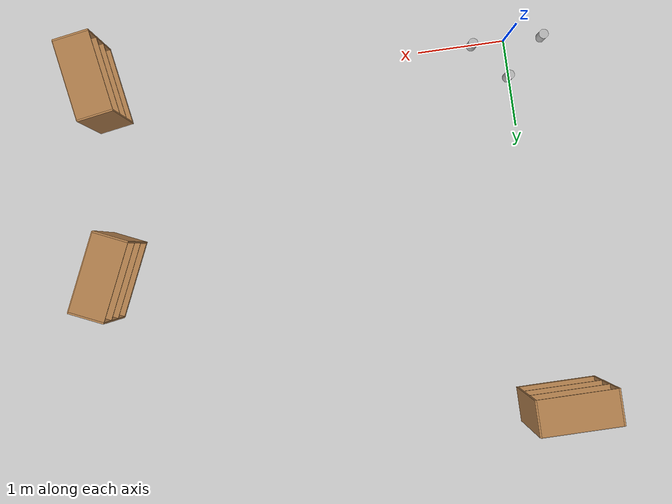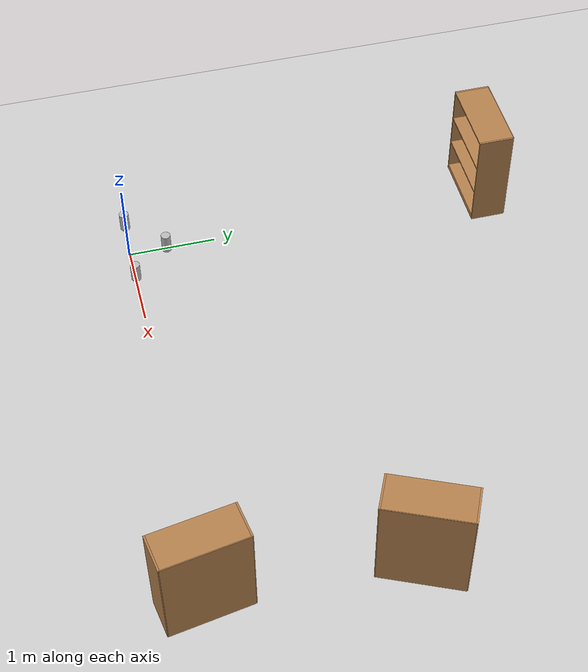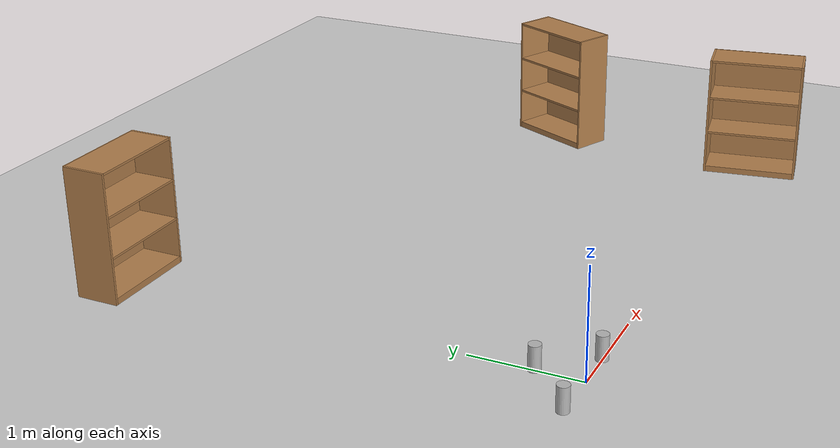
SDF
<sdf version="1.6">
 <world name="default">
  <model name="ground_plane">
   <static>1</static>
   <link name="link">
    <collision name="collision">
     <geometry><plane><normal>0 0 1</normal><size>5000 5000</size></plane></geometry>
     <surface><friction><ode><mu>1</mu><mu2>1</mu2></ode></friction></surface>
    </collision>
    <visual name="runway">
     <pose>0 0 0.005 0 0 -1.5707</pose>
     <cast_shadows>0</cast_shadows>
     <geometry><plane><normal>0 0 1</normal><size>1829 45</size></plane></geometry>
     <material>
      <script><uri>file://media/materials/scripts/gazebo.material</uri><name>Gazebo/Runway</name></script>
     </material>
    </visual>
    <visual name="grass">
     <pose>0 0 -0.1 0 -0 0</pose>
     <cast_shadows>0</cast_shadows>
     <geometry><plane><normal>0 0 1</normal><size>5000 5000</size></plane></geometry>
     <material>
      <script><uri>file://media/materials/scripts/gazebo.material</uri><name>Gazebo/Grass</name></script>
     </material>
    </visual>
   </link>
  </model>
  <model name="beer">
   <link name="link">
    <pose>0 0 0.115 0 -0 0</pose>
    <inertial>
     <mass>0.39</mass>
     <inertia><ixx>0.00058</ixx><ixy>0</ixy><ixz>0</ixz><iyy>0.00058</iyy><iyz>0</iyz><izz>0.00019</izz></inertia>
    </inertial>
    <collision name="collision">
     <geometry><cylinder><radius>0.055</radius><length>0.23</length></cylinder></geometry>
    </collision>
    <visual name="visual">
     <geometry><cylinder><radius>0.055</radius><length>0.23</length></cylinder></geometry>
     <material>
      <script>
       <uri>model://beer/materials/scripts</uri>
       <uri>model://beer/materials/textures</uri>
       <name>Beer/Diffuse</name>
      </script>
     </material>
    </visual>
   </link>
   <pose>0.380747 0.009912 -9e-06 0 -0 1e-05</pose>
  </model>
  <model name="beer_0">
   <link name="link">
    <pose>0 0 0.115 0 -0 0</pose>
    <inertial>
     <mass>0.39</mass>
     <inertia><ixx>0.00058</ixx><ixy>0</ixy><ixz>0</ixz><iyy>0.00058</iyy><iyz>0</iyz><izz>0.00019</izz></inertia>
    </inertial>
    <collision name="collision">
     <geometry><cylinder><radius>0.055</radius><length>0.23</length></cylinder></geometry>
    </collision>
    <visual name="visual">
     <geometry><cylinder><radius>0.055</radius><length>0.23</length></cylinder></geometry>
     <material>
      <script>
       <uri>model://beer/materials/scripts</uri>
       <uri>model://beer/materials/textures</uri>
       <name>Beer/Diffuse</name>
      </script>
     </material>
    </visual>
   </link>
   <pose>-0.438596 0.020012 -2e-06 0 0 -4.3e-05</pose>
  </model>
  <model name="beer_2">
   <link name="link">
    <pose>0 0 0.115 0 -0 0</pose>
    <inertial>
     <mass>0.39</mass>
     <inertia><ixx>0.00058</ixx><ixy>0</ixy><ixz>0</ixz><iyy>0.00058</iyy><iyz>0</iyz><izz>0.00019</izz></inertia>
    </inertial>
    <collision name="collision">
     <geometry><cylinder><radius>0.055</radius><length>0.23</length></cylinder></geometry>
    </collision>
    <visual name="visual">
     <geometry><cylinder><radius>0.055</radius><length>0.23</length></cylinder></geometry>
     <material>
      <script>
       <uri>model://beer/materials/scripts</uri>
       <uri>model://beer/materials/textures</uri>
       <name>Beer/Diffuse</name>
      </script>
     </material>
    </visual>
   </link>
   <pose>0.01568 0.431746 -1e-06 0 -0 7.6e-05</pose>
  </model>
  <model name="bookshelf">
   <static>1</static>
   <link name="link">
    <inertial><mass>1</mass></inertial>
    <collision name="back">
     <pose>0 0.005 0.6 0 -0 0</pose>
     <geometry><box><size>0.9 0.01 1.2</size></box></geometry>
    </collision>
    <visual name="visual1">
     <pose>0 0.005 0.6 0 -0 0</pose>
     <geometry><box><size>0.9 0.01 1.2</size></box></geometry>
     <material>
      <script><uri>file://media/materials/scripts/gazebo.material</uri><name>Gazebo/Wood</name></script>
     </material>
    </visual>
    <collision name="left_side">
     <pose>0.45 -0.195 0.6 0 -0 0</pose>
     <geometry><box><size>0.02 0.4 1.2</size></box></geometry>
    </collision>
    <visual name="visual2">
     <pose>0.45 -0.195 0.6 0 -0 0</pose>
     <geometry><box><size>0.02 0.4 1.2</size></box></geometry>
     <material>
      <script><uri>file://media/materials/scripts/gazebo.material</uri><name>Gazebo/Wood</name></script>
     </material>
    </visual>
    <collision name="right_side">
     <pose>-0.45 -0.195 0.6 0 -0 0</pose>
     <geometry><box><size>0.02 0.4 1.2</size></box></geometry>
    </collision>
    <visual name="visual3">
     <pose>-0.45 -0.195 0.6 0 -0 0</pose>
     <geometry><box><size>0.02 0.4 1.2</size></box></geometry>
     <material>
      <script><uri>file://media/materials/scripts/gazebo.material</uri><name>Gazebo/Wood</name></script>
     </material>
    </visual>
    <collision name="bottom">
     <pose>0 -0.195 0.03 0 -0 0</pose>
     <geometry><box><size>0.88 0.4 0.06</size></box></geometry>
    </collision>
    <visual name="visual4">
     <pose>0 -0.195 0.03 0 -0 0</pose>
     <geometry><box><size>0.88 0.4 0.06</size></box></geometry>
     <material>
      <script><uri>file://media/materials/scripts/gazebo.material</uri><name>Gazebo/Wood</name></script>
     </material>
    </visual>
    <collision name="top">
     <pose>0 -0.195 1.19 0 -0 0</pose>
     <geometry><box><size>0.88 0.4 0.02</size></box></geometry>
    </collision>
    <visual name="visual5">
     <pose>0 -0.195 1.19 0 -0 0</pose>
     <geometry><box><size>0.88 0.4 0.02</size></box></geometry>
     <material>
      <script><uri>file://media/materials/scripts/gazebo.material</uri><name>Gazebo/Wood</name></script>
     </material>
    </visual>
    <collision name="low_shelf">
     <pose>0 -0.195 0.43 0 -0 0</pose>
     <geometry><box><size>0.88 0.4 0.02</size></box></geometry>
    </collision>
    <visual name="visual6">
     <pose>0 -0.195 0.43 0 -0 0</pose>
     <geometry><box><size>0.88 0.4 0.02</size></box></geometry>
     <material>
      <script><uri>file://media/materials/scripts/gazebo.material</uri><name>Gazebo/Wood</name></script>
     </material>
    </visual>
    <collision name="high_shelf">
     <pose>0 -0.195 0.8 0 -0 0</pose>
     <geometry><box><size>0.88 0.4 0.02</size></box></geometry>
    </collision>
    <visual name="visual7">
     <pose>0 -0.195 0.8 0 -0 0</pose>
     <geometry><box><size>0.88 0.4 0.02</size></box></geometry>
     <material>
      <script><uri>file://media/materials/scripts/gazebo.material</uri><name>Gazebo/Wood</name></script>
     </material>
    </visual>
   </link>
   <pose>4.88432 -0.040911 0 0 0 -1.40902</pose>
  </model>
  <model name="bookshelf_clone">
   <static>1</static>
   <link name="link">
    <inertial><mass>1</mass></inertial>
    <collision name="back">
     <pose>0 0.005 0.6 0 -0 0</pose>
     <geometry><box><size>0.9 0.01 1.2</size></box></geometry>
    </collision>
    <visual name="visual1">
     <pose>0 0.005 0.6 0 -0 0</pose>
     <geometry><box><size>0.9 0.01 1.2</size></box></geometry>
     <material>
      <script><uri>file://media/materials/scripts/gazebo.material</uri><name>Gazebo/Wood</name></script>
     </material>
    </visual>
    <collision name="left_side">
     <pose>0.45 -0.195 0.6 0 -0 0</pose>
     <geometry><box><size>0.02 0.4 1.2</size></box></geometry>
    </collision>
    <visual name="visual2">
     <pose>0.45 -0.195 0.6 0 -0 0</pose>
     <geometry><box><size>0.02 0.4 1.2</size></box></geometry>
     <material>
      <script><uri>file://media/materials/scripts/gazebo.material</uri><name>Gazebo/Wood</name></script>
     </material>
    </visual>
    <collision name="right_side">
     <pose>-0.45 -0.195 0.6 0 -0 0</pose>
     <geometry><box><size>0.02 0.4 1.2</size></box></geometry>
    </collision>
    <visual name="visual3">
     <pose>-0.45 -0.195 0.6 0 -0 0</pose>
     <geometry><box><size>0.02 0.4 1.2</size></box></geometry>
     <material>
      <script><uri>file://media/materials/scripts/gazebo.material</uri><name>Gazebo/Wood</name></script>
     </material>
    </visual>
    <collision name="bottom">
     <pose>0 -0.195 0.03 0 -0 0</pose>
     <geometry><box><size>0.88 0.4 0.06</size></box></geometry>
    </collision>
    <visual name="visual4">
     <pose>0 -0.195 0.03 0 -0 0</pose>
     <geometry><box><size>0.88 0.4 0.06</size></box></geometry>
     <material>
      <script><uri>file://media/materials/scripts/gazebo.material</uri><name>Gazebo/Wood</name></script>
     </material>
    </visual>
    <collision name="top">
     <pose>0 -0.195 1.19 0 -0 0</pose>
     <geometry><box><size>0.88 0.4 0.02</size></box></geometry>
    </collision>
    <visual name="visual5">
     <pose>0 -0.195 1.19 0 -0 0</pose>
     <geometry><box><size>0.88 0.4 0.02</size></box></geometry>
     <material>
      <script><uri>file://media/materials/scripts/gazebo.material</uri><name>Gazebo/Wood</name></script>
     </material>
    </visual>
    <collision name="low_shelf">
     <pose>0 -0.195 0.43 0 -0 0</pose>
     <geometry><box><size>0.88 0.4 0.02</size></box></geometry>
    </collision>
    <visual name="visual6">
     <pose>0 -0.195 0.43 0 -0 0</pose>
     <geometry><box><size>0.88 0.4 0.02</size></box></geometry>
     <material>
      <script><uri>file://media/materials/scripts/gazebo.material</uri><name>Gazebo/Wood</name></script>
     </material>
    </visual>
    <collision name="high_shelf">
     <pose>0 -0.195 0.8 0 -0 0</pose>
     <geometry><box><size>0.88 0.4 0.02</size></box></geometry>
    </collision>
    <visual name="visual7">
     <pose>0 -0.195 0.8 0 -0 0</pose>
     <geometry><box><size>0.88 0.4 0.02</size></box></geometry>
     <material>
      <script><uri>file://media/materials/scripts/gazebo.material</uri><name>Gazebo/Wood</name></script>
     </material>
    </visual>
   </link>
   <pose>5 2 0 0 0 -1.99754</pose>
  </model>
  <model name="bookshelf_clone_1">
   <static>1</static>
   <link name="link">
    <inertial><mass>1</mass></inertial>
    <collision name="back">
     <pose>0 0.005 0.6 0 -0 0</pose>
     <geometry><box><size>0.9 0.01 1.2</size></box></geometry>
    </collision>
    <visual name="visual1">
     <pose>0 0.005 0.6 0 -0 0</pose>
     <geometry><box><size>0.9 0.01 1.2</size></box></geometry>
     <material>
      <script><uri>file://media/materials/scripts/gazebo.material</uri><name>Gazebo/Wood</name></script>
     </material>
    </visual>
    <collision name="left_side">
     <pose>0.45 -0.195 0.6 0 -0 0</pose>
     <geometry><box><size>0.02 0.4 1.2</size></box></geometry>
    </collision>
    <visual name="visual2">
     <pose>0.45 -0.195 0.6 0 -0 0</pose>
     <geometry><box><size>0.02 0.4 1.2</size></box></geometry>
     <material>
      <script><uri>file://media/materials/scripts/gazebo.material</uri><name>Gazebo/Wood</name></script>
     </material>
    </visual>
    <collision name="right_side">
     <pose>-0.45 -0.195 0.6 0 -0 0</pose>
     <geometry><box><size>0.02 0.4 1.2</size></box></geometry>
    </collision>
    <visual name="visual3">
     <pose>-0.45 -0.195 0.6 0 -0 0</pose>
     <geometry><box><size>0.02 0.4 1.2</size></box></geometry>
     <material>
      <script><uri>file://media/materials/scripts/gazebo.material</uri><name>Gazebo/Wood</name></script>
     </material>
    </visual>
    <collision name="bottom">
     <pose>0 -0.195 0.03 0 -0 0</pose>
     <geometry><box><size>0.88 0.4 0.06</size></box></geometry>
    </collision>
    <visual name="visual4">
     <pose>0 -0.195 0.03 0 -0 0</pose>
     <geometry><box><size>0.88 0.4 0.06</size></box></geometry>
     <material>
      <script><uri>file://media/materials/scripts/gazebo.material</uri><name>Gazebo/Wood</name></script>
     </material>
    </visual>
    <collision name="top">
     <pose>0 -0.195 1.19 0 -0 0</pose>
     <geometry><box><size>0.88 0.4 0.02</size></box></geometry>
    </collision>
    <visual name="visual5">
     <pose>0 -0.195 1.19 0 -0 0</pose>
     <geometry><box><size>0.88 0.4 0.02</size></box></geometry>
     <material>
      <script><uri>file://media/materials/scripts/gazebo.material</uri><name>Gazebo/Wood</name></script>
     </material>
    </visual>
    <collision name="low_shelf">
     <pose>0 -0.195 0.43 0 -0 0</pose>
     <geometry><box><size>0.88 0.4 0.02</size></box></geometry>
    </collision>
    <visual name="visual6">
     <pose>0 -0.195 0.43 0 -0 0</pose>
     <geometry><box><size>0.88 0.4 0.02</size></box></geometry>
     <material>
      <script><uri>file://media/materials/scripts/gazebo.material</uri><name>Gazebo/Wood</name></script>
     </material>
    </visual>
    <collision name="high_shelf">
     <pose>0 -0.195 0.8 0 -0 0</pose>
     <geometry><box><size>0.88 0.4 0.02</size></box></geometry>
    </collision>
    <visual name="visual7">
     <pose>0 -0.195 0.8 0 -0 0</pose>
     <geometry><box><size>0.88 0.4 0.02</size></box></geometry>
     <material>
      <script><uri>file://media/materials/scripts/gazebo.material</uri><name>Gazebo/Wood</name></script>
     </material>
    </visual>
   </link>
   <pose>-0.029239 4.41694 0 0 -0 0</pose>
  </model>
 </world>
</sdf>
